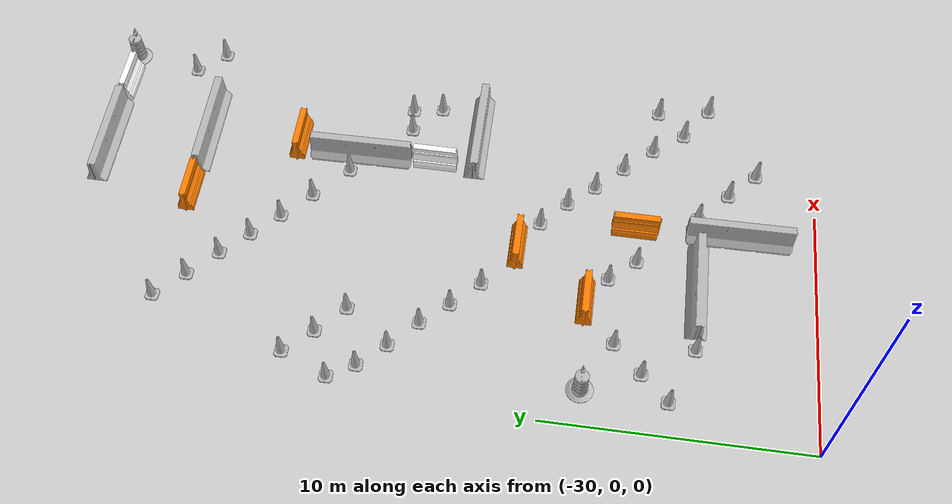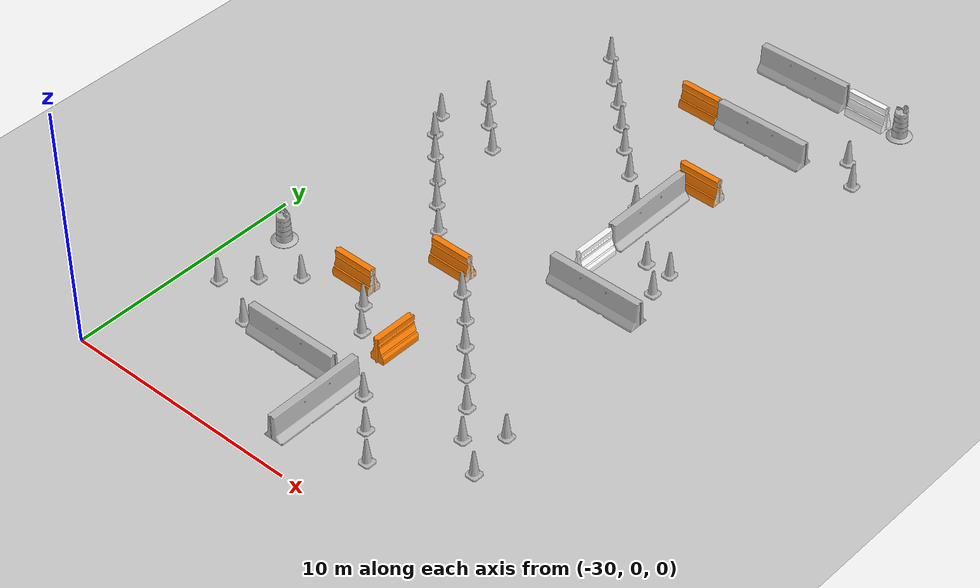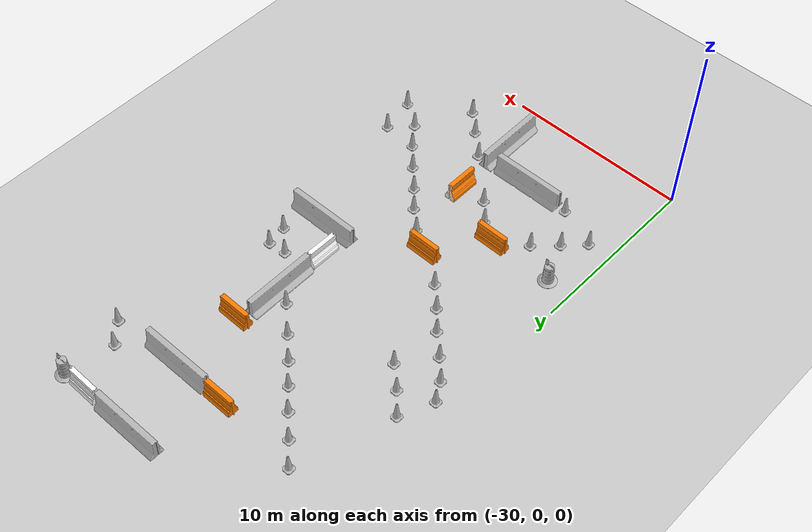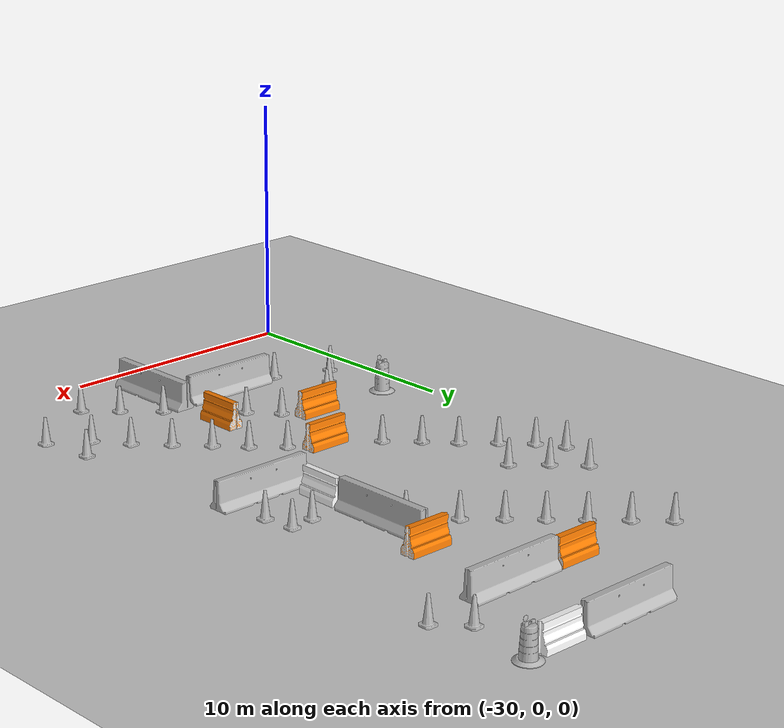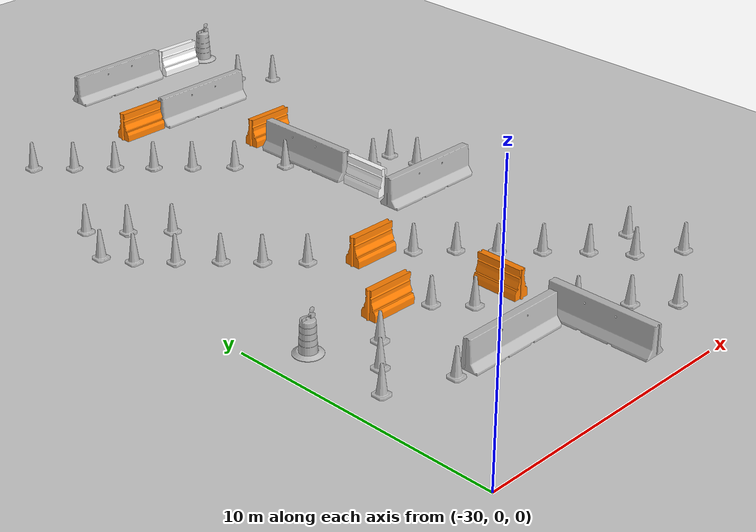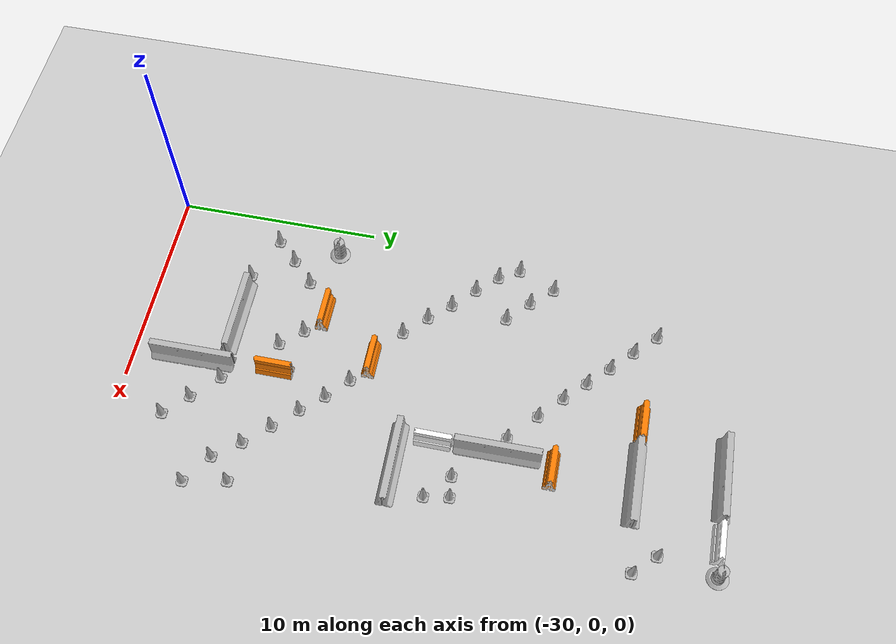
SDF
<sdf version="1.6">
 <world name="default">
  <model name="ground_plane">
   <static>1</static>
   <link name="link">
    <collision name="collision">
     <geometry><plane><normal>0 0 1</normal><size>100 100</size></plane></geometry>
     <surface>
      <contact><collide_bitmask>65535</collide_bitmask></contact>
      <friction><ode><mu>100</mu><mu2>50</mu2></ode></friction>
     </surface>
    </collision>
    <visual name="visual">
     <cast_shadows>0</cast_shadows>
     <geometry><plane><normal>0 0 1</normal><size>100 100</size></plane></geometry>
     <material>
      <script><uri>file://media/materials/scripts/gazebo.material</uri><name>Gazebo/Grey</name></script>
     </material>
    </visual>
   </link>
  </model>
  <model name="jersey_barrier_clone_clone_clone_0">
   <static>1</static>
   <link name="link">
    <visual name="visual">
     <geometry><mesh><uri>model://jersey_barrier/meshes/jersey_barrier.dae</uri></mesh></geometry>
    </visual>
    <collision name="upright">
     <pose>0 0 0.5715 0 -0 0</pose>
     <geometry><box><size>4.06542 0.3063 1.143</size></box></geometry>
    </collision>
    <collision name="base">
     <pose>0 0 0.032258 0 -0 0</pose>
     <geometry><box><size>4.06542 0.8107 0.064516</size></box></geometry>
    </collision>
    <collision name="base2">
     <pose>0 0 0.1 0 -0 0</pose>
     <geometry><box><size>4.06542 0.65 0.1</size></box></geometry>
    </collision>
    <collision name="base3">
     <pose>0 0 0.2 0 -0 0</pose>
     <geometry><box><size>4.06542 0.5 0.1</size></box></geometry>
    </collision>
    <collision name="left-angle">
     <pose>0 -0.224 0.2401 0.9 -0 0</pose>
     <geometry><box><size>4.06542 0.5 0.064516</size></box></geometry>
    </collision>
    <collision name="right-angle">
     <pose>0 0.224 0.2401 -0.9 0 0</pose>
     <geometry><box><size>4.06542 0.5 0.064516</size></box></geometry>
    </collision>
   </link>
   <pose>-20.0373 28.4134 0 0 -0 0</pose>
  </model>
  <model name="drc_practice_white_jersey_barrier_clone_clone_clone_clone">
   <static>1</static>
   <link name="link">
    <visual name="visual">
     <geometry>
      <mesh><uri>model://drc_practice_white_jersey_barrier/meshes/jersey_barrier.dae</uri></mesh>
     </geometry>
    </visual>
    <collision name="collision">
     <geometry>
      <mesh><uri>model://drc_practice_white_jersey_barrier/meshes/jersey_barrier.dae</uri></mesh>
     </geometry>
    </collision>
   </link>
   <pose>-16.9572 28.3837 0 0 0 -1.58176</pose>
  </model>
  <model name="Construction Barrel_clone_clone">
   <static>1</static>
   <link name="link">
    <inertial>
     <pose>0 0 0.4 0 -0 0</pose>
     <mass>500</mass>
     <inertia><ixx>51.2096</ixx><iyy>51.2096</iyy><izz>25</izz><ixy>0</ixy><ixz>0</ixz><iyz>0</iyz></inertia>
    </inertial>
    <collision name="collision">
     <geometry><mesh><uri>model://construction_barrel/meshes/construction_barrel.dae</uri></mesh></geometry>
    </collision>
    <visual name="visual">
     <geometry><mesh><uri>model://construction_barrel/meshes/construction_barrel.dae</uri></mesh></geometry>
    </visual>
   </link>
   <pose>-15.5034 28.4468 -0 0 0 -0.001474</pose>
  </model>
  <model name="Construction Cone_0_clone_0_clone_clone_clone_clone_clone_3_clone_0_clone_clone_clone_1_clone_1_clone_6_clone_clone_3_clone_1">
   <static>1</static>
   <link name="link">
    <collision name="collision">
     <geometry>
      <mesh><scale>10 10 10</scale><uri>model://construction_cone/meshes/construction_cone.dae</uri></mesh>
     </geometry>
    </collision>
    <visual name="visual">
     <geometry>
      <mesh><scale>10 10 10</scale><uri>model://construction_cone/meshes/construction_cone.dae</uri></mesh>
     </geometry>
    </visual>
    <inertial>
     <inertia><ixx>1</ixx><ixy>0</ixy><ixz>0</ixz><iyy>1</iyy><iyz>0</iyz><izz>1</izz></inertia>
     <mass>1</mass>
    </inertial>
   </link>
   <pose>-14.9937 24.7444 -0 0 -1e-06 0</pose>
  </model>
  <model name="Construction Cone_0_clone_0_clone_clone_clone_clone_clone_3_clone_0_clone_clone_clone_1_clone_1_clone_6_clone_clone_3_clone_2">
   <static>1</static>
   <link name="link">
    <collision name="collision">
     <geometry>
      <mesh><scale>10 10 10</scale><uri>model://construction_cone/meshes/construction_cone.dae</uri></mesh>
     </geometry>
    </collision>
    <visual name="visual">
     <geometry>
      <mesh><scale>10 10 10</scale><uri>model://construction_cone/meshes/construction_cone.dae</uri></mesh>
     </geometry>
    </visual>
    <inertial>
     <inertia><ixx>1</ixx><ixy>0</ixy><ixz>0</ixz><iyy>1</iyy><iyz>0</iyz><izz>1</izz></inertia>
     <mass>1</mass>
    </inertial>
   </link>
   <pose>-15.9531 25.7822 -0 0 -1e-06 0</pose>
  </model>
  <model name="Construction Cone_0_clone_0_clone_clone_clone_clone_clone_3_clone_0_clone_clone_clone_1_clone_1_clone_6_clone_clone_3_clone_clone">
   <static>1</static>
   <link name="link">
    <collision name="collision">
     <geometry>
      <mesh><scale>10 10 10</scale><uri>model://construction_cone/meshes/construction_cone.dae</uri></mesh>
     </geometry>
    </collision>
    <visual name="visual">
     <geometry>
      <mesh><scale>10 10 10</scale><uri>model://construction_cone/meshes/construction_cone.dae</uri></mesh>
     </geometry>
    </visual>
    <inertial>
     <inertia><ixx>1</ixx><ixy>0</ixy><ixz>0</ixz><iyy>1</iyy><iyz>0</iyz><izz>1</izz></inertia>
     <mass>1</mass>
    </inertial>
   </link>
   <pose>-16.6713 15.1741 -0 0 -1e-06 0</pose>
  </model>
  <model name="Construction Cone_0_clone_0_clone_clone_clone_clone_clone_3_clone_0_clone_clone_clone_1_clone_1_clone_6_clone_clone_3_clone_clone_0">
   <static>1</static>
   <link name="link">
    <collision name="collision">
     <geometry>
      <mesh><scale>10 10 10</scale><uri>model://construction_cone/meshes/construction_cone.dae</uri></mesh>
     </geometry>
    </collision>
    <visual name="visual">
     <geometry>
      <mesh><scale>10 10 10</scale><uri>model://construction_cone/meshes/construction_cone.dae</uri></mesh>
     </geometry>
    </visual>
    <inertial>
     <inertia><ixx>1</ixx><ixy>0</ixy><ixz>0</ixz><iyy>1</iyy><iyz>0</iyz><izz>1</izz></inertia>
     <mass>1</mass>
    </inertial>
   </link>
   <pose>-16.8655 16.3543 -0 0 -0 0</pose>
  </model>
  <model name="jersey_barrier_clone_clone_clone_clone_clone_clone_clone_clone_clone_clone_clone_1">
   <static>1</static>
   <link name="link">
    <visual name="visual">
     <geometry><mesh><uri>model://jersey_barrier/meshes/jersey_barrier.dae</uri></mesh></geometry>
    </visual>
    <collision name="upright">
     <pose>0 0 0.5715 0 -0 0</pose>
     <geometry><box><size>4.06542 0.3063 1.143</size></box></geometry>
    </collision>
    <collision name="base">
     <pose>0 0 0.032258 0 -0 0</pose>
     <geometry><box><size>4.06542 0.8107 0.064516</size></box></geometry>
    </collision>
    <collision name="base2">
     <pose>0 0 0.1 0 -0 0</pose>
     <geometry><box><size>4.06542 0.65 0.1</size></box></geometry>
    </collision>
    <collision name="base3">
     <pose>0 0 0.2 0 -0 0</pose>
     <geometry><box><size>4.06542 0.5 0.1</size></box></geometry>
    </collision>
    <collision name="left-angle">
     <pose>0 -0.224 0.2401 0.9 -0 0</pose>
     <geometry><box><size>4.06542 0.5 0.064516</size></box></geometry>
    </collision>
    <collision name="right-angle">
     <pose>0 0.224 0.2401 -0.9 0 0</pose>
     <geometry><box><size>4.06542 0.5 0.064516</size></box></geometry>
    </collision>
   </link>
   <pose>-19.4071 18.1223 0 0 0 -1.56391</pose>
  </model>
  <model name="Construction Cone_0_clone_0_clone_clone_clone_clone_clone_3_clone_0_clone_clone_clone_1_clone_1_clone_6_clone_clone_3_clone_clone_0_clone">
   <static>1</static>
   <link name="link">
    <collision name="collision">
     <geometry>
      <mesh><scale>10 10 10</scale><uri>model://construction_cone/meshes/construction_cone.dae</uri></mesh>
     </geometry>
    </collision>
    <visual name="visual">
     <geometry>
      <mesh><scale>10 10 10</scale><uri>model://construction_cone/meshes/construction_cone.dae</uri></mesh>
     </geometry>
    </visual>
    <inertial>
     <inertia><ixx>1</ixx><ixy>0</ixy><ixz>0</ixz><iyy>1</iyy><iyz>0</iyz><izz>1</izz></inertia>
     <mass>1</mass>
    </inertial>
   </link>
   <pose>-17.8625 16.2582 -0 0 -0 0</pose>
  </model>
  <model name="drc_practice_organge_jersey_barrier_clone_clone_clone_1_clone">
   <static>1</static>
   <link name="link">
    <visual name="visual">
     <geometry>
      <mesh><uri>model://drc_practice_orange_jersey_barrier/meshes/jersey_barrier.dae</uri></mesh>
     </geometry>
    </visual>
    <collision name="collision">
     <geometry>
      <mesh><uri>model://drc_practice_orange_jersey_barrier/meshes/jersey_barrier.dae</uri></mesh>
     </geometry>
    </collision>
   </link>
   <pose>-18.9708 20.6882 0 0 0 -1.57472</pose>
  </model>
  <model name="drc_practice_white_jersey_barrier_clone_clone_clone_0_clone_0_clone_clone_2">
   <static>1</static>
   <link name="link">
    <visual name="visual">
     <geometry>
      <mesh><uri>model://drc_practice_white_jersey_barrier/meshes/jersey_barrier.dae</uri></mesh>
     </geometry>
    </visual>
    <collision name="collision">
     <geometry>
      <mesh><uri>model://drc_practice_white_jersey_barrier/meshes/jersey_barrier.dae</uri></mesh>
     </geometry>
    </collision>
   </link>
   <pose>-19.3701 15.1006 0 0 -0 3.13979</pose>
  </model>
  <model name="jersey_barrier_clone_clone_clone_0_clone_clone_clone_clone_0_clone">
   <static>1</static>
   <link name="link">
    <visual name="visual">
     <geometry><mesh><uri>model://jersey_barrier/meshes/jersey_barrier.dae</uri></mesh></geometry>
    </visual>
    <collision name="upright">
     <pose>0 0 0.5715 0 -0 0</pose>
     <geometry><box><size>4.06542 0.3063 1.143</size></box></geometry>
    </collision>
    <collision name="base">
     <pose>0 0 0.032258 0 -0 0</pose>
     <geometry><box><size>4.06542 0.8107 0.064516</size></box></geometry>
    </collision>
    <collision name="base2">
     <pose>0 0 0.1 0 -0 0</pose>
     <geometry><box><size>4.06542 0.65 0.1</size></box></geometry>
    </collision>
    <collision name="base3">
     <pose>0 0 0.2 0 -0 0</pose>
     <geometry><box><size>4.06542 0.5 0.1</size></box></geometry>
    </collision>
    <collision name="left-angle">
     <pose>0 -0.224 0.2401 0.9 -0 0</pose>
     <geometry><box><size>4.06542 0.5 0.064516</size></box></geometry>
    </collision>
    <collision name="right-angle">
     <pose>0 0.224 0.2401 -0.9 0 0</pose>
     <geometry><box><size>4.06542 0.5 0.064516</size></box></geometry>
    </collision>
   </link>
   <pose>-17.9216 13.5014 0 0 -0 0</pose>
  </model>
  <model name="Construction Cone_0_clone_0_clone_clone_clone_clone_clone_3_clone_0_clone_clone_clone_1_clone_1_clone_6_clone_clone_3_clone_clone_clone_2">
   <static>1</static>
   <link name="link">
    <collision name="collision">
     <geometry>
      <mesh><scale>10 10 10</scale><uri>model://construction_cone/meshes/construction_cone.dae</uri></mesh>
     </geometry>
    </collision>
    <visual name="visual">
     <geometry>
      <mesh><scale>10 10 10</scale><uri>model://construction_cone/meshes/construction_cone.dae</uri></mesh>
     </geometry>
    </visual>
    <inertial>
     <inertia><ixx>1</ixx><ixy>0</ixy><ixz>0</ixz><iyy>1</iyy><iyz>0</iyz><izz>1</izz></inertia>
     <mass>1</mass>
    </inertial>
   </link>
   <pose>-15.6766 6.30176 -0 0 -1e-06 0</pose>
  </model>
  <model name="Construction Cone_0_clone_0_clone_clone_clone_clone_clone_3_clone_0_clone_clone_clone_1_clone_1_clone_6_clone_clone_3_clone_clone_clone_3">
   <static>1</static>
   <link name="link">
    <collision name="collision">
     <geometry>
      <mesh><scale>10 10 10</scale><uri>model://construction_cone/meshes/construction_cone.dae</uri></mesh>
     </geometry>
    </collision>
    <visual name="visual">
     <geometry>
      <mesh><scale>10 10 10</scale><uri>model://construction_cone/meshes/construction_cone.dae</uri></mesh>
     </geometry>
    </visual>
    <inertial>
     <inertia><ixx>1</ixx><ixy>0</ixy><ixz>0</ixz><iyy>1</iyy><iyz>0</iyz><izz>1</izz></inertia>
     <mass>1</mass>
    </inertial>
   </link>
   <pose>-16.6953 5.23656 -0 0 -1e-06 0</pose>
  </model>
  <model name="Construction Cone_0_clone_0_clone_clone_clone_clone_clone_3_clone_0_clone_clone_clone_1_clone_1_clone_6_clone_clone_3_clone_clone_clone_3_clone">
   <static>1</static>
   <link name="link">
    <collision name="collision">
     <geometry>
      <mesh><scale>10 10 10</scale><uri>model://construction_cone/meshes/construction_cone.dae</uri></mesh>
     </geometry>
    </collision>
    <visual name="visual">
     <geometry>
      <mesh><scale>10 10 10</scale><uri>model://construction_cone/meshes/construction_cone.dae</uri></mesh>
     </geometry>
    </visual>
    <inertial>
     <inertia><ixx>1</ixx><ixy>0</ixy><ixz>0</ixz><iyy>1</iyy><iyz>0</iyz><izz>1</izz></inertia>
     <mass>1</mass>
    </inertial>
   </link>
   <pose>-17.621 6.4428 -0 0 -0 0</pose>
  </model>
  <model name="Construction Cone_0_clone_0_clone_clone_clone_clone_clone_3_clone_0_clone_clone_clone_1_clone_1_clone_6_clone_clone_3_clone_clone_clone_3_clone_0">
   <static>1</static>
   <link name="link">
    <collision name="collision">
     <geometry>
      <mesh><scale>10 10 10</scale><uri>model://construction_cone/meshes/construction_cone.dae</uri></mesh>
     </geometry>
    </collision>
    <visual name="visual">
     <geometry>
      <mesh><scale>10 10 10</scale><uri>model://construction_cone/meshes/construction_cone.dae</uri></mesh>
     </geometry>
    </visual>
    <inertial>
     <inertia><ixx>1</ixx><ixy>0</ixy><ixz>0</ixz><iyy>1</iyy><iyz>0</iyz><izz>1</izz></inertia>
     <mass>1</mass>
    </inertial>
   </link>
   <pose>-18.6737 7.56939 -0 0 -0 0</pose>
  </model>
  <model name="Construction Cone_0_clone_0_clone_clone_clone_clone_clone_3_clone_0_clone_clone_clone_1_clone_1_clone_6_clone_clone_3_clone_clone_clone_3_clone_1">
   <static>1</static>
   <link name="link">
    <collision name="collision">
     <geometry>
      <mesh><scale>10 10 10</scale><uri>model://construction_cone/meshes/construction_cone.dae</uri></mesh>
     </geometry>
    </collision>
    <visual name="visual">
     <geometry>
      <mesh><scale>10 10 10</scale><uri>model://construction_cone/meshes/construction_cone.dae</uri></mesh>
     </geometry>
    </visual>
    <inertial>
     <inertia><ixx>1</ixx><ixy>0</ixy><ixz>0</ixz><iyy>1</iyy><iyz>0</iyz><izz>1</izz></inertia>
     <mass>1</mass>
    </inertial>
   </link>
   <pose>-19.7277 8.64455 0 -0 -0 -0</pose>
  </model>
  <model name="Construction Cone_0_clone_0_clone_clone_clone_clone_clone_3_clone_0_clone_clone_clone_1_clone_1_clone_6_clone_clone_3_clone_clone_clone_3_clone_2">
   <static>1</static>
   <link name="link">
    <collision name="collision">
     <geometry>
      <mesh><scale>10 10 10</scale><uri>model://construction_cone/meshes/construction_cone.dae</uri></mesh>
     </geometry>
    </collision>
    <visual name="visual">
     <geometry>
      <mesh><scale>10 10 10</scale><uri>model://construction_cone/meshes/construction_cone.dae</uri></mesh>
     </geometry>
    </visual>
    <inertial>
     <inertia><ixx>1</ixx><ixy>0</ixy><ixz>0</ixz><iyy>1</iyy><iyz>0</iyz><izz>1</izz></inertia>
     <mass>1</mass>
    </inertial>
   </link>
   <pose>-20.6521 9.66905 -6e-06 2e-06 -0 0</pose>
  </model>
  <model name="Construction Cone_0_clone_0_clone_clone_clone_clone_clone_3_clone_0_clone_clone_clone_1_clone_1_clone_6_clone_clone_3_clone_clone_clone_3_clone_3">
   <static>1</static>
   <link name="link">
    <collision name="collision">
     <geometry>
      <mesh><scale>10 10 10</scale><uri>model://construction_cone/meshes/construction_cone.dae</uri></mesh>
     </geometry>
    </collision>
    <visual name="visual">
     <geometry>
      <mesh><scale>10 10 10</scale><uri>model://construction_cone/meshes/construction_cone.dae</uri></mesh>
     </geometry>
    </visual>
    <inertial>
     <inertia><ixx>1</ixx><ixy>0</ixy><ixz>0</ixz><iyy>1</iyy><iyz>0</iyz><izz>1</izz></inertia>
     <mass>1</mass>
    </inertial>
   </link>
   <pose>-21.7063 10.6419 0 -1e-06 0 0</pose>
  </model>
  <model name="drc_practice_organge_jersey_barrier_clone_clone_clone_2_clone_0_clone">
   <static>1</static>
   <link name="link">
    <visual name="visual">
     <geometry>
      <mesh><uri>model://drc_practice_orange_jersey_barrier/meshes/jersey_barrier.dae</uri></mesh>
     </geometry>
    </visual>
    <collision name="collision">
     <geometry>
      <mesh><uri>model://drc_practice_orange_jersey_barrier/meshes/jersey_barrier.dae</uri></mesh>
     </geometry>
    </collision>
   </link>
   <pose>-22.9227 11.4164 0 0 0 -1.57472</pose>
  </model>
  <model name="Construction Cone_0_clone_0_clone_clone_clone_clone_clone_3_clone_0_clone_clone_clone_1_clone_1_clone_6_clone_clone_3_clone_clone_clone_3_clone_3_clone">
   <static>1</static>
   <link name="link">
    <collision name="collision">
     <geometry>
      <mesh><scale>10 10 10</scale><uri>model://construction_cone/meshes/construction_cone.dae</uri></mesh>
     </geometry>
    </collision>
    <visual name="visual">
     <geometry>
      <mesh><scale>10 10 10</scale><uri>model://construction_cone/meshes/construction_cone.dae</uri></mesh>
     </geometry>
    </visual>
    <inertial>
     <inertia><ixx>1</ixx><ixy>0</ixy><ixz>0</ixz><iyy>1</iyy><iyz>0</iyz><izz>1</izz></inertia>
     <mass>1</mass>
    </inertial>
   </link>
   <pose>-24.7043 12.6033 -0 0 -1e-06 0</pose>
  </model>
  <model name="Construction Cone_0_clone_0_clone_clone_clone_clone_clone_3_clone_0_clone_clone_clone_1_clone_1_clone_6_clone_clone_3_clone_clone_clone_3_clone_3_clone_0">
   <static>1</static>
   <link name="link">
    <collision name="collision">
     <geometry>
      <mesh><scale>10 10 10</scale><uri>model://construction_cone/meshes/construction_cone.dae</uri></mesh>
     </geometry>
    </collision>
    <visual name="visual">
     <geometry>
      <mesh><scale>10 10 10</scale><uri>model://construction_cone/meshes/construction_cone.dae</uri></mesh>
     </geometry>
    </visual>
    <inertial>
     <inertia><ixx>1</ixx><ixy>0</ixy><ixz>0</ixz><iyy>1</iyy><iyz>0</iyz><izz>1</izz></inertia>
     <mass>1</mass>
    </inertial>
   </link>
   <pose>-25.7574 13.6528 -0 0 -1e-06 0</pose>
  </model>
  <model name="Construction Cone_0_clone_0_clone_clone_clone_clone_clone_3_clone_0_clone_clone_clone_1_clone_1_clone_6_clone_clone_3_clone_clone_clone_3_clone_3_clone_1">
   <static>1</static>
   <link name="link">
    <collision name="collision">
     <geometry>
      <mesh><scale>10 10 10</scale><uri>model://construction_cone/meshes/construction_cone.dae</uri></mesh>
     </geometry>
    </collision>
    <visual name="visual">
     <geometry>
      <mesh><scale>10 10 10</scale><uri>model://construction_cone/meshes/construction_cone.dae</uri></mesh>
     </geometry>
    </visual>
    <inertial>
     <inertia><ixx>1</ixx><ixy>0</ixy><ixz>0</ixz><iyy>1</iyy><iyz>0</iyz><izz>1</izz></inertia>
     <mass>1</mass>
    </inertial>
   </link>
   <pose>-26.6826 14.6777 0 -0 -0 -0</pose>
  </model>
  <model name="Construction Cone_0_clone_0_clone_clone_clone_clone_clone_3_clone_0_clone_clone_clone_1_clone_1_clone_6_clone_clone_3_clone_clone_clone_3_clone_3_clone_2">
   <static>1</static>
   <link name="link">
    <collision name="collision">
     <geometry>
      <mesh><scale>10 10 10</scale><uri>model://construction_cone/meshes/construction_cone.dae</uri></mesh>
     </geometry>
    </collision>
    <visual name="visual">
     <geometry>
      <mesh><scale>10 10 10</scale><uri>model://construction_cone/meshes/construction_cone.dae</uri></mesh>
     </geometry>
    </visual>
    <inertial>
     <inertia><ixx>1</ixx><ixy>0</ixy><ixz>0</ixz><iyy>1</iyy><iyz>0</iyz><izz>1</izz></inertia>
     <mass>1</mass>
    </inertial>
   </link>
   <pose>-27.7614 15.7018 -6e-06 2e-06 -0 0</pose>
  </model>
  <model name="Construction Cone_0_clone_0_clone_clone_clone_clone_clone_3_clone_0_clone_clone_clone_1_clone_1_clone_6_clone_clone_3_clone_clone_clone_3_clone_3_clone_3">
   <static>1</static>
   <link name="link">
    <collision name="collision">
     <geometry>
      <mesh><scale>10 10 10</scale><uri>model://construction_cone/meshes/construction_cone.dae</uri></mesh>
     </geometry>
    </collision>
    <visual name="visual">
     <geometry>
      <mesh><scale>10 10 10</scale><uri>model://construction_cone/meshes/construction_cone.dae</uri></mesh>
     </geometry>
    </visual>
    <inertial>
     <inertia><ixx>1</ixx><ixy>0</ixy><ixz>0</ixz><iyy>1</iyy><iyz>0</iyz><izz>1</izz></inertia>
     <mass>1</mass>
    </inertial>
   </link>
   <pose>-28.7112 16.7007 -0 0 -0 0</pose>
  </model>
  <model name="Construction Cone_0_clone_0_clone_clone_clone_clone_clone_3_clone_0_clone_clone_clone_1_clone_1_clone_6_clone_clone_3_clone_clone_clone_3_clone_3_clone_4">
   <static>1</static>
   <link name="link">
    <collision name="collision">
     <geometry>
      <mesh><scale>10 10 10</scale><uri>model://construction_cone/meshes/construction_cone.dae</uri></mesh>
     </geometry>
    </collision>
    <visual name="visual">
     <geometry>
      <mesh><scale>10 10 10</scale><uri>model://construction_cone/meshes/construction_cone.dae</uri></mesh>
     </geometry>
    </visual>
    <inertial>
     <inertia><ixx>1</ixx><ixy>0</ixy><ixz>0</ixz><iyy>1</iyy><iyz>0</iyz><izz>1</izz></inertia>
     <mass>1</mass>
    </inertial>
   </link>
   <pose>-29.3039 17.7 -0 0 -0 0</pose>
  </model>
  <model name="Construction Cone_0_clone_0_clone_clone_clone_clone_clone_3_clone_0_clone_clone_clone_1_clone_1_clone_6_clone_clone_3_clone_clone_clone_3_clone_3_clone_5">
   <static>1</static>
   <link name="link">
    <collision name="collision">
     <geometry>
      <mesh><scale>10 10 10</scale><uri>model://construction_cone/meshes/construction_cone.dae</uri></mesh>
     </geometry>
    </collision>
    <visual name="visual">
     <geometry>
      <mesh><scale>10 10 10</scale><uri>model://construction_cone/meshes/construction_cone.dae</uri></mesh>
     </geometry>
    </visual>
    <inertial>
     <inertia><ixx>1</ixx><ixy>0</ixy><ixz>0</ixz><iyy>1</iyy><iyz>0</iyz><izz>1</izz></inertia>
     <mass>1</mass>
    </inertial>
   </link>
   <pose>-28.5166 19.5173 -0 0 -1e-06 0</pose>
  </model>
  <model name="Construction Cone_0_clone_0_clone_clone_clone_clone_clone_3_clone_0_clone_clone_clone_1_clone_1_clone_6_clone_clone_3_clone_clone_clone_3_clone_3_clone_6">
   <static>1</static>
   <link name="link">
    <collision name="collision">
     <geometry>
      <mesh><scale>10 10 10</scale><uri>model://construction_cone/meshes/construction_cone.dae</uri></mesh>
     </geometry>
    </collision>
    <visual name="visual">
     <geometry>
      <mesh><scale>10 10 10</scale><uri>model://construction_cone/meshes/construction_cone.dae</uri></mesh>
     </geometry>
    </visual>
    <inertial>
     <inertia><ixx>1</ixx><ixy>0</ixy><ixz>0</ixz><iyy>1</iyy><iyz>0</iyz><izz>1</izz></inertia>
     <mass>1</mass>
    </inertial>
   </link>
   <pose>-27.5395 18.4679 -0 0 -1e-06 0</pose>
  </model>
  <model name="Construction Cone_0_clone_0_clone_clone_clone_clone_clone_3_clone_0_clone_clone_clone_1_clone_1_clone_6_clone_clone_3_clone_clone_clone_3_clone_3_clone_7">
   <static>1</static>
   <link name="link">
    <collision name="collision">
     <geometry>
      <mesh><scale>10 10 10</scale><uri>model://construction_cone/meshes/construction_cone.dae</uri></mesh>
     </geometry>
    </collision>
    <visual name="visual">
     <geometry>
      <mesh><scale>10 10 10</scale><uri>model://construction_cone/meshes/construction_cone.dae</uri></mesh>
     </geometry>
    </visual>
    <inertial>
     <inertia><ixx>1</ixx><ixy>0</ixy><ixz>0</ixz><iyy>1</iyy><iyz>0</iyz><izz>1</izz></inertia>
     <mass>1</mass>
    </inertial>
   </link>
   <pose>-26.4351 17.4432 -1e-05 -1e-06 0 0</pose>
  </model>
  <model name="Construction Cone_0_clone_0_clone_clone_clone_clone_clone_3_clone_0_clone_clone_clone_1_clone_1_clone_6_clone_clone_3_clone_clone_clone_3_clone_3_clone_8">
   <static>1</static>
   <link name="link">
    <collision name="collision">
     <geometry>
      <mesh><scale>10 10 10</scale><uri>model://construction_cone/meshes/construction_cone.dae</uri></mesh>
     </geometry>
    </collision>
    <visual name="visual">
     <geometry>
      <mesh><scale>10 10 10</scale><uri>model://construction_cone/meshes/construction_cone.dae</uri></mesh>
     </geometry>
    </visual>
    <inertial>
     <inertia><ixx>1</ixx><ixy>0</ixy><ixz>0</ixz><iyy>1</iyy><iyz>0</iyz><izz>1</izz></inertia>
     <mass>1</mass>
    </inertial>
   </link>
   <pose>-20.2049 18.4527 -0 0 -1e-06 0</pose>
  </model>
  <model name="Construction Cone_0_clone_0_clone_clone_clone_clone_clone_3_clone_0_clone_clone_clone_1_clone_1_clone_6_clone_clone_3_clone_clone_clone_3_clone_3_clone_9">
   <static>1</static>
   <link name="link">
    <collision name="collision">
     <geometry>
      <mesh><scale>10 10 10</scale><uri>model://construction_cone/meshes/construction_cone.dae</uri></mesh>
     </geometry>
    </collision>
    <visual name="visual">
     <geometry>
      <mesh><scale>10 10 10</scale><uri>model://construction_cone/meshes/construction_cone.dae</uri></mesh>
     </geometry>
    </visual>
    <inertial>
     <inertia><ixx>1</ixx><ixy>0</ixy><ixz>0</ixz><iyy>1</iyy><iyz>0</iyz><izz>1</izz></inertia>
     <mass>1</mass>
    </inertial>
   </link>
   <pose>-21.5665 19.7079 -0 0 -0 0</pose>
  </model>
  <model name="Construction Cone_0_clone_0_clone_clone_clone_clone_clone_3_clone_0_clone_clone_clone_1_clone_1_clone_6_clone_clone_3_clone_clone_clone_3_clone_3_clone_10">
   <static>1</static>
   <link name="link">
    <collision name="collision">
     <geometry>
      <mesh><scale>10 10 10</scale><uri>model://construction_cone/meshes/construction_cone.dae</uri></mesh>
     </geometry>
    </collision>
    <visual name="visual">
     <geometry>
      <mesh><scale>10 10 10</scale><uri>model://construction_cone/meshes/construction_cone.dae</uri></mesh>
     </geometry>
    </visual>
    <inertial>
     <inertia><ixx>1</ixx><ixy>0</ixy><ixz>0</ixz><iyy>1</iyy><iyz>0</iyz><izz>1</izz></inertia>
     <mass>1</mass>
    </inertial>
   </link>
   <pose>-22.6972 20.7576 -0 0 -0 0</pose>
  </model>
  <model name="Construction Cone_0_clone_0_clone_clone_clone_clone_clone_3_clone_0_clone_clone_clone_1_clone_1_clone_6_clone_clone_3_clone_clone_clone_3_clone_3_clone_11">
   <static>1</static>
   <link name="link">
    <collision name="collision">
     <geometry>
      <mesh><scale>10 10 10</scale><uri>model://construction_cone/meshes/construction_cone.dae</uri></mesh>
     </geometry>
    </collision>
    <visual name="visual">
     <geometry>
      <mesh><scale>10 10 10</scale><uri>model://construction_cone/meshes/construction_cone.dae</uri></mesh>
     </geometry>
    </visual>
    <inertial>
     <inertia><ixx>1</ixx><ixy>0</ixy><ixz>0</ixz><iyy>1</iyy><iyz>0</iyz><izz>1</izz></inertia>
     <mass>1</mass>
    </inertial>
   </link>
   <pose>-23.6986 21.7555 -0 0 -1e-06 0</pose>
  </model>
  <model name="Construction Cone_0_clone_0_clone_clone_clone_clone_clone_3_clone_0_clone_clone_clone_1_clone_1_clone_6_clone_clone_3_clone_clone_clone_3_clone_3_clone_12">
   <static>1</static>
   <link name="link">
    <collision name="collision">
     <geometry>
      <mesh><scale>10 10 10</scale><uri>model://construction_cone/meshes/construction_cone.dae</uri></mesh>
     </geometry>
    </collision>
    <visual name="visual">
     <geometry>
      <mesh><scale>10 10 10</scale><uri>model://construction_cone/meshes/construction_cone.dae</uri></mesh>
     </geometry>
    </visual>
    <inertial>
     <inertia><ixx>1</ixx><ixy>0</ixy><ixz>0</ixz><iyy>1</iyy><iyz>0</iyz><izz>1</izz></inertia>
     <mass>1</mass>
    </inertial>
   </link>
   <pose>-24.7003 22.7548 -1e-05 -1e-06 0 0</pose>
  </model>
  <model name="Construction Cone_0_clone_0_clone_clone_clone_clone_clone_3_clone_0_clone_clone_clone_1_clone_1_clone_6_clone_clone_3_clone_clone_clone_3_clone_3_clone_13">
   <static>1</static>
   <link name="link">
    <collision name="collision">
     <geometry>
      <mesh><scale>10 10 10</scale><uri>model://construction_cone/meshes/construction_cone.dae</uri></mesh>
     </geometry>
    </collision>
    <visual name="visual">
     <geometry>
      <mesh><scale>10 10 10</scale><uri>model://construction_cone/meshes/construction_cone.dae</uri></mesh>
     </geometry>
    </visual>
    <inertial>
     <inertia><ixx>1</ixx><ixy>0</ixy><ixz>0</ixz><iyy>1</iyy><iyz>0</iyz><izz>1</izz></inertia>
     <mass>1</mass>
    </inertial>
   </link>
   <pose>-25.7794 23.7797 -0 0 -1e-06 0</pose>
  </model>
  <model name="Construction Cone_0_clone_0_clone_clone_clone_clone_clone_3_clone_0_clone_clone_clone_1_clone_1_clone_6_clone_clone_3_clone_clone_clone_3_clone_3_clone_14">
   <static>1</static>
   <link name="link">
    <collision name="collision">
     <geometry>
      <mesh><scale>10 10 10</scale><uri>model://construction_cone/meshes/construction_cone.dae</uri></mesh>
     </geometry>
    </collision>
    <visual name="visual">
     <geometry>
      <mesh><scale>10 10 10</scale><uri>model://construction_cone/meshes/construction_cone.dae</uri></mesh>
     </geometry>
    </visual>
    <inertial>
     <inertia><ixx>1</ixx><ixy>0</ixy><ixz>0</ixz><iyy>1</iyy><iyz>0</iyz><izz>1</izz></inertia>
     <mass>1</mass>
    </inertial>
   </link>
   <pose>-26.8338 24.8296 -0 0 -1e-06 0</pose>
  </model>
  <model name="drc_practice_organge_jersey_barrier_clone_clone_clone_1_clone_clone">
   <static>1</static>
   <link name="link">
    <visual name="visual">
     <geometry>
      <mesh><uri>model://drc_practice_orange_jersey_barrier/meshes/jersey_barrier.dae</uri></mesh>
     </geometry>
    </visual>
    <collision name="collision">
     <geometry>
      <mesh><uri>model://drc_practice_orange_jersey_barrier/meshes/jersey_barrier.dae</uri></mesh>
     </geometry>
    </collision>
   </link>
   <pose>-22.0155 24.5285 0 0 0 -1.57472</pose>
  </model>
  <model name="Construction Cone_0_clone_0_clone_clone_clone_clone_clone_3_clone_0_clone_clone_clone_1_clone_1_clone_6_clone_clone_3_clone_clone_clone_3_clone_4">
   <static>1</static>
   <link name="link">
    <collision name="collision">
     <geometry>
      <mesh><scale>10 10 10</scale><uri>model://construction_cone/meshes/construction_cone.dae</uri></mesh>
     </geometry>
    </collision>
    <visual name="visual">
     <geometry>
      <mesh><scale>10 10 10</scale><uri>model://construction_cone/meshes/construction_cone.dae</uri></mesh>
     </geometry>
    </visual>
    <inertial>
     <inertia><ixx>1</ixx><ixy>0</ixy><ixz>0</ixz><iyy>1</iyy><iyz>0</iyz><izz>1</izz></inertia>
     <mass>1</mass>
    </inertial>
   </link>
   <pose>-18.344 2.32632 -0 0 -1e-06 0</pose>
  </model>
  <model name="Construction Cone_0_clone_0_clone_clone_clone_clone_clone_3_clone_0_clone_clone_clone_1_clone_1_clone_6_clone_clone_3_clone_clone_clone_3_clone_5">
   <static>1</static>
   <link name="link">
    <collision name="collision">
     <geometry>
      <mesh><scale>10 10 10</scale><uri>model://construction_cone/meshes/construction_cone.dae</uri></mesh>
     </geometry>
    </collision>
    <visual name="visual">
     <geometry>
      <mesh><scale>10 10 10</scale><uri>model://construction_cone/meshes/construction_cone.dae</uri></mesh>
     </geometry>
    </visual>
    <inertial>
     <inertia><ixx>1</ixx><ixy>0</ixy><ixz>0</ixz><iyy>1</iyy><iyz>0</iyz><izz>1</izz></inertia>
     <mass>1</mass>
    </inertial>
   </link>
   <pose>-19.432 3.38268 -0 0 -0 0</pose>
  </model>
  <model name="Construction Cone_0_clone_0_clone_clone_clone_clone_clone_3_clone_0_clone_clone_clone_1_clone_1_clone_6_clone_clone_3_clone_clone_clone_3_clone_6">
   <static>1</static>
   <link name="link">
    <collision name="collision">
     <geometry>
      <mesh><scale>10 10 10</scale><uri>model://construction_cone/meshes/construction_cone.dae</uri></mesh>
     </geometry>
    </collision>
    <visual name="visual">
     <geometry>
      <mesh><scale>10 10 10</scale><uri>model://construction_cone/meshes/construction_cone.dae</uri></mesh>
     </geometry>
    </visual>
    <inertial>
     <inertia><ixx>1</ixx><ixy>0</ixy><ixz>0</ixz><iyy>1</iyy><iyz>0</iyz><izz>1</izz></inertia>
     <mass>1</mass>
    </inertial>
   </link>
   <pose>-20.6583 4.55011 -0 0 -0 0</pose>
  </model>
  <model name="jersey_barrier_clone_clone_clone_clone_clone_clone_clone_clone_clone_clone_clone_2_clone">
   <static>1</static>
   <link name="link">
    <visual name="visual">
     <geometry><mesh><uri>model://jersey_barrier/meshes/jersey_barrier.dae</uri></mesh></geometry>
    </visual>
    <collision name="upright">
     <pose>0 0 0.5715 0 -0 0</pose>
     <geometry><box><size>4.06542 0.3063 1.143</size></box></geometry>
    </collision>
    <collision name="base">
     <pose>0 0 0.032258 0 -0 0</pose>
     <geometry><box><size>4.06542 0.8107 0.064516</size></box></geometry>
    </collision>
    <collision name="base2">
     <pose>0 0 0.1 0 -0 0</pose>
     <geometry><box><size>4.06542 0.65 0.1</size></box></geometry>
    </collision>
    <collision name="base3">
     <pose>0 0 0.2 0 -0 0</pose>
     <geometry><box><size>4.06542 0.5 0.1</size></box></geometry>
    </collision>
    <collision name="left-angle">
     <pose>0 -0.224 0.2401 0.9 -0 0</pose>
     <geometry><box><size>4.06542 0.5 0.064516</size></box></geometry>
    </collision>
    <collision name="right-angle">
     <pose>0 0.224 0.2401 -0.9 0 0</pose>
     <geometry><box><size>4.06542 0.5 0.064516</size></box></geometry>
    </collision>
   </link>
   <pose>-21.4348 2.96204 0 0 0 -1.56391</pose>
  </model>
  <model name="drc_practice_organge_jersey_barrier_clone_clone_0_clone_0_clone_0_clone_clone_0">
   <static>1</static>
   <link name="link">
    <visual name="visual">
     <geometry>
      <mesh><uri>model://drc_practice_orange_jersey_barrier/meshes/jersey_barrier.dae</uri></mesh>
     </geometry>
    </visual>
    <collision name="collision">
     <geometry>
      <mesh><uri>model://drc_practice_orange_jersey_barrier/meshes/jersey_barrier.dae</uri></mesh>
     </geometry>
    </collision>
   </link>
   <pose>-21.535 6.98578 0 0 -0 0</pose>
  </model>
  <model name="Construction Cone_0_clone_0_clone_clone_clone_clone_clone_3_clone_0_clone_clone_clone_1_clone_1_clone_6_clone_clone_3_clone_clone_clone_3_clone_6_clone">
   <static>1</static>
   <link name="link">
    <collision name="collision">
     <geometry>
      <mesh><scale>10 10 10</scale><uri>model://construction_cone/meshes/construction_cone.dae</uri></mesh>
     </geometry>
    </collision>
    <visual name="visual">
     <geometry>
      <mesh><scale>10 10 10</scale><uri>model://construction_cone/meshes/construction_cone.dae</uri></mesh>
     </geometry>
    </visual>
    <inertial>
     <inertia><ixx>1</ixx><ixy>0</ixy><ixz>0</ixz><iyy>1</iyy><iyz>0</iyz><izz>1</izz></inertia>
     <mass>1</mass>
    </inertial>
   </link>
   <pose>-22.9548 6.81639 -1e-05 0 1e-06 0</pose>
  </model>
  <model name="Construction Cone_0_clone_0_clone_clone_clone_clone_clone_3_clone_0_clone_clone_clone_1_clone_1_clone_6_clone_clone_3_clone_clone_clone_3_clone_6_clone_0">
   <static>1</static>
   <link name="link">
    <collision name="collision">
     <geometry>
      <mesh><scale>10 10 10</scale><uri>model://construction_cone/meshes/construction_cone.dae</uri></mesh>
     </geometry>
    </collision>
    <visual name="visual">
     <geometry>
      <mesh><scale>10 10 10</scale><uri>model://construction_cone/meshes/construction_cone.dae</uri></mesh>
     </geometry>
    </visual>
    <inertial>
     <inertia><ixx>1</ixx><ixy>0</ixy><ixz>0</ixz><iyy>1</iyy><iyz>0</iyz><izz>1</izz></inertia>
     <mass>1</mass>
    </inertial>
   </link>
   <pose>-23.875 7.84532 -0 0 -1e-06 0</pose>
  </model>
  <model name="Construction Cone_0_clone_0_clone_clone_clone_clone_clone_3_clone_0_clone_clone_clone_1_clone_1_clone_6_clone_clone_3_clone_clone_clone_3_clone_6_clone_0_clone">
   <static>1</static>
   <link name="link">
    <collision name="collision">
     <geometry>
      <mesh><scale>10 10 10</scale><uri>model://construction_cone/meshes/construction_cone.dae</uri></mesh>
     </geometry>
    </collision>
    <visual name="visual">
     <geometry>
      <mesh><scale>10 10 10</scale><uri>model://construction_cone/meshes/construction_cone.dae</uri></mesh>
     </geometry>
    </visual>
    <inertial>
     <inertia><ixx>1</ixx><ixy>0</ixy><ixz>0</ixz><iyy>1</iyy><iyz>0</iyz><izz>1</izz></inertia>
     <mass>1</mass>
    </inertial>
   </link>
   <pose>-26.5923 7.46309 -0 -0 -0 -0</pose>
  </model>
  <model name="Construction Cone_0_clone_0_clone_clone_clone_clone_clone_3_clone_0_clone_clone_clone_1_clone_1_clone_6_clone_clone_3_clone_clone_clone_3_clone_6_clone_0_clone_0">
   <static>1</static>
   <link name="link">
    <collision name="collision">
     <geometry>
      <mesh><scale>10 10 10</scale><uri>model://construction_cone/meshes/construction_cone.dae</uri></mesh>
     </geometry>
    </collision>
    <visual name="visual">
     <geometry>
      <mesh><scale>10 10 10</scale><uri>model://construction_cone/meshes/construction_cone.dae</uri></mesh>
     </geometry>
    </visual>
    <inertial>
     <inertia><ixx>1</ixx><ixy>0</ixy><ixz>0</ixz><iyy>1</iyy><iyz>0</iyz><izz>1</izz></inertia>
     <mass>1</mass>
    </inertial>
   </link>
   <pose>-27.6992 6.39414 -0 0 -0 0</pose>
  </model>
  <model name="Construction Cone_0_clone_0_clone_clone_clone_clone_clone_3_clone_0_clone_clone_clone_1_clone_1_clone_6_clone_clone_3_clone_clone_clone_3_clone_6_clone_0_clone_1">
   <static>1</static>
   <link name="link">
    <collision name="collision">
     <geometry>
      <mesh><scale>10 10 10</scale><uri>model://construction_cone/meshes/construction_cone.dae</uri></mesh>
     </geometry>
    </collision>
    <visual name="visual">
     <geometry>
      <mesh><scale>10 10 10</scale><uri>model://construction_cone/meshes/construction_cone.dae</uri></mesh>
     </geometry>
    </visual>
    <inertial>
     <inertia><ixx>1</ixx><ixy>0</ixy><ixz>0</ixz><iyy>1</iyy><iyz>0</iyz><izz>1</izz></inertia>
     <mass>1</mass>
    </inertial>
   </link>
   <pose>-28.6952 5.36712 -0 0 -0 0</pose>
  </model>
  <model name="Construction Barrel_clone_clone_clone_0">
   <static>1</static>
   <link name="link">
    <inertial>
     <pose>0 0 0.4 0 -0 0</pose>
     <mass>500</mass>
     <inertia><ixx>51.2096</ixx><iyy>51.2096</iyy><izz>25</izz><ixy>0</ixy><ixz>0</ixz><iyz>0</iyz></inertia>
    </inertial>
    <collision name="collision">
     <geometry><mesh><uri>model://construction_barrel/meshes/construction_barrel.dae</uri></mesh></geometry>
    </collision>
    <visual name="visual">
     <geometry><mesh><uri>model://construction_barrel/meshes/construction_barrel.dae</uri></mesh></geometry>
    </visual>
   </link>
   <pose>-28.5934 8.54734 -4e-06 -5e-06 -7e-06 -0.001468</pose>
  </model>
  <model name="jersey_barrier_clone_clone_clone_0_clone_clone_clone_clone_0_clone_0">
   <static>1</static>
   <link name="link">
    <visual name="visual">
     <geometry><mesh><uri>model://jersey_barrier/meshes/jersey_barrier.dae</uri></mesh></geometry>
    </visual>
    <collision name="upright">
     <pose>0 0 0.5715 0 -0 0</pose>
     <geometry><box><size>4.06542 0.3063 1.143</size></box></geometry>
    </collision>
    <collision name="base">
     <pose>0 0 0.032258 0 -0 0</pose>
     <geometry><box><size>4.06542 0.8107 0.064516</size></box></geometry>
    </collision>
    <collision name="base2">
     <pose>0 0 0.1 0 -0 0</pose>
     <geometry><box><size>4.06542 0.65 0.1</size></box></geometry>
    </collision>
    <collision name="base3">
     <pose>0 0 0.2 0 -0 0</pose>
     <geometry><box><size>4.06542 0.5 0.1</size></box></geometry>
    </collision>
    <collision name="left-angle">
     <pose>0 -0.224 0.2401 0.9 -0 0</pose>
     <geometry><box><size>4.06542 0.5 0.064516</size></box></geometry>
    </collision>
    <collision name="right-angle">
     <pose>0 0.224 0.2401 -0.9 0 0</pose>
     <geometry><box><size>4.06542 0.5 0.064516</size></box></geometry>
    </collision>
   </link>
   <pose>-24.0017 4.48375 0 0 -0 0</pose>
  </model>
  <model name="Construction Cone_0_clone_0_clone_clone_clone_clone_clone_3_clone_0_clone_clone_clone_1_clone_1_clone_6_clone_clone_3_clone_clone_clone_3_clone_6_clone_0_clone_1_clone">
   <static>1</static>
   <link name="link">
    <collision name="collision">
     <geometry>
      <mesh><scale>10 10 10</scale><uri>model://construction_cone/meshes/construction_cone.dae</uri></mesh>
     </geometry>
    </collision>
    <visual name="visual">
     <geometry>
      <mesh><scale>10 10 10</scale><uri>model://construction_cone/meshes/construction_cone.dae</uri></mesh>
     </geometry>
    </visual>
    <inertial>
     <inertia><ixx>1</ixx><ixy>0</ixy><ixz>0</ixz><iyy>1</iyy><iyz>0</iyz><izz>1</izz></inertia>
     <mass>1</mass>
    </inertial>
   </link>
   <pose>-26.4554 4.46387 -0 0 -0 0</pose>
  </model>
  <model name="Construction Cone_0_clone_0_clone_clone_clone_clone_clone_3_clone_0_clone_clone_clone_1_clone_1_clone_6_clone_clone_3_clone_clone_clone_3_clone_7">
   <static>1</static>
   <link name="link">
    <collision name="collision">
     <geometry>
      <mesh><scale>10 10 10</scale><uri>model://construction_cone/meshes/construction_cone.dae</uri></mesh>
     </geometry>
    </collision>
    <visual name="visual">
     <geometry>
      <mesh><scale>10 10 10</scale><uri>model://construction_cone/meshes/construction_cone.dae</uri></mesh>
     </geometry>
    </visual>
    <inertial>
     <inertia><ixx>1</ixx><ixy>0</ixy><ixz>0</ixz><iyy>1</iyy><iyz>0</iyz><izz>1</izz></inertia>
     <mass>1</mass>
    </inertial>
   </link>
   <pose>-15.2951 4.2717 -0 0 -0 0</pose>
  </model>
  <model name="drc_practice_organge_jersey_barrier_clone_clone_clone_2_clone_0_clone_clone">
   <static>1</static>
   <link name="link">
    <visual name="visual">
     <geometry>
      <mesh><uri>model://drc_practice_orange_jersey_barrier/meshes/jersey_barrier.dae</uri></mesh>
     </geometry>
    </visual>
    <collision name="collision">
     <geometry>
      <mesh><uri>model://drc_practice_orange_jersey_barrier/meshes/jersey_barrier.dae</uri></mesh>
     </geometry>
    </collision>
   </link>
   <pose>-25.0239 8.63 0 0 0 -1.57472</pose>
  </model>
  <model name="jersey_barrier_clone_clone_clone_0_clone_0">
   <static>1</static>
   <link name="link">
    <visual name="visual">
     <geometry><mesh><uri>model://jersey_barrier/meshes/jersey_barrier.dae</uri></mesh></geometry>
    </visual>
    <collision name="upright">
     <pose>0 0 0.5715 0 -0 0</pose>
     <geometry><box><size>4.06542 0.3063 1.143</size></box></geometry>
    </collision>
    <collision name="base">
     <pose>0 0 0.032258 0 -0 0</pose>
     <geometry><box><size>4.06542 0.8107 0.064516</size></box></geometry>
    </collision>
    <collision name="base2">
     <pose>0 0 0.1 0 -0 0</pose>
     <geometry><box><size>4.06542 0.65 0.1</size></box></geometry>
    </collision>
    <collision name="base3">
     <pose>0 0 0.2 0 -0 0</pose>
     <geometry><box><size>4.06542 0.5 0.1</size></box></geometry>
    </collision>
    <collision name="left-angle">
     <pose>0 -0.224 0.2401 0.9 -0 0</pose>
     <geometry><box><size>4.06542 0.5 0.064516</size></box></geometry>
    </collision>
    <collision name="right-angle">
     <pose>0 0.224 0.2401 -0.9 0 0</pose>
     <geometry><box><size>4.06542 0.5 0.064516</size></box></geometry>
    </collision>
   </link>
   <pose>-19.0444 24.4677 0 0 -0 0</pose>
  </model>
 </world>
</sdf>
